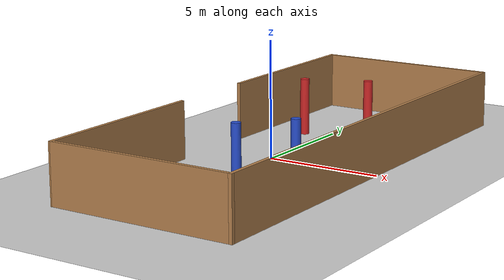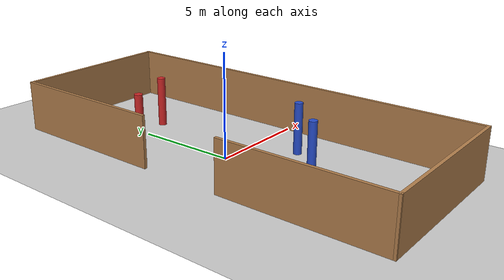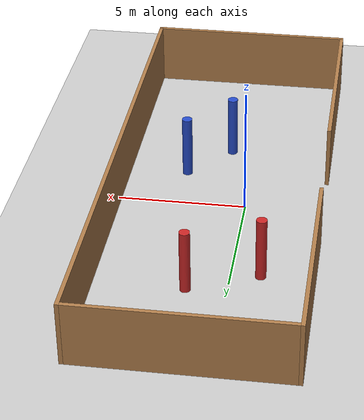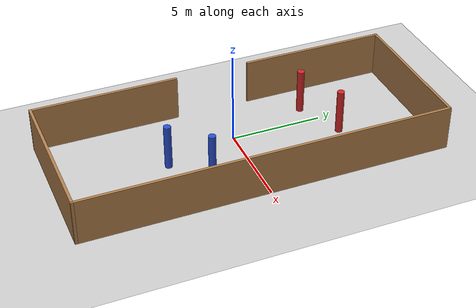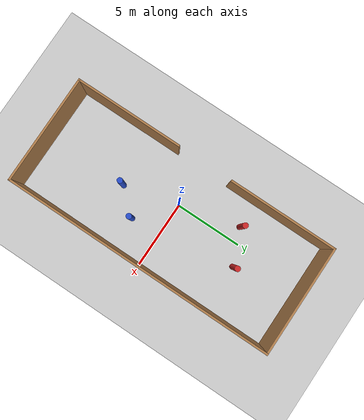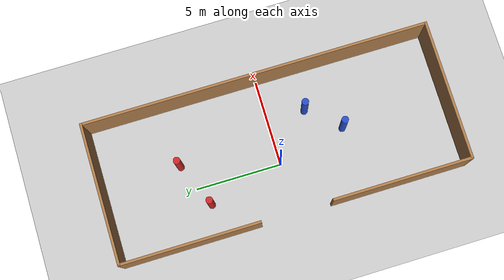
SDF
<?xml version="1.0" ?>
<sdf version="1.5">
  <world name="default">

    <physics type="ode">
      <type>world</type>
      <max_step_size>0.001</max_step_size>
      <real_time_update_rate>1000</real_time_update_rate>
      <iters>500</iters>
    </physics>

    <!-- 光源 -->
    <include>
      <uri>model://sun</uri>
    </include>

    <!-- 地板 -->
    <include>
      <uri>model://ground_plane</uri>
    </include>

    <!-- 你的牆壁與障礙物場景 -->
    <include>
      <uri>model://my_world</uri>
    </include>

  </world>
</sdf>

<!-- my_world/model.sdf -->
<sdf version='1.7'>
  <model name='my_world'>
    <pose>0 0 0 0 0 0</pose>
    <link name='Wall_0'>
      <collision name='Wall_0_Collision'>
        <geometry>
          <box>
            <size>20.15 0.15 2.5</size>
          </box>
        </geometry>
        <pose>0 0 1.25 0 -0 0</pose>
      </collision>
      <visual name='Wall_0_Visual'>
        <pose>0 0 1.25 0 -0 0</pose>
        <geometry>
          <box>
            <size>20.15 0.15 2.5</size>
          </box>
        </geometry>
        <material>
          <script>
            <uri>file://media/materials/scripts/gazebo.material</uri>
            <name>Gazebo/Wood</name>
          </script>
          <ambient>1 1 1 1</ambient>
        </material>
        <meta>
          <layer>0</layer>
        </meta>
      </visual>
      <pose>4.9625 9e-06 0 0 -0 -1.5708</pose>
    </link>
    <link name='Wall_2'>
      <collision name='Wall_2_Collision'>
        <geometry>
          <box>
            <size>8.15 0.15 2.5</size>
          </box>
        </geometry>
        <pose>0 0 1.25 0 -0 0</pose>
      </collision>
      <visual name='Wall_2_Visual'>
        <pose>0 0 1.25 0 -0 0</pose>
        <geometry>
          <box>
            <size>8.15 0.15 2.5</size>
          </box>
        </geometry>
        <material>
          <script>
            <uri>file://media/materials/scripts/gazebo.material</uri>
            <name>Gazebo/Wood</name>
          </script>
          <ambient>1 1 1 1</ambient>
        </material>
        <meta>
          <layer>0</layer>
        </meta>
      </visual>
      <pose>0.9625 10 0 0 -0 0</pose>
    </link>
    <link name='Wall_4'>
      <collision name='Wall_4_Collision'>
        <geometry>
          <box>
            <size>8.05 0.15 2.5</size>
          </box>
        </geometry>
        <pose>0 0 1.25 0 -0 0</pose>
      </collision>
      <visual name='Wall_4_Visual'>
        <pose>0 0 1.25 0 -0 0</pose>
        <geometry>
          <box>
            <size>8.05 0.15 2.5</size>
          </box>
        </geometry>
        <material>
          <script>
            <uri>file://media/materials/scripts/gazebo.material</uri>
            <name>Gazebo/Wood</name>
          </script>
          <ambient>1 1 1 1</ambient>
        </material>
        <meta>
          <layer>0</layer>
        </meta>
      </visual>
      <pose>-3.0375 6.05001 0 0 -0 1.5708</pose>
    </link>
    <link name='Wall_6'>
      <collision name='Wall_6_Collision'>
        <geometry>
          <box>
            <size>8.05 0.15 2.5</size>
          </box>
        </geometry>
        <pose>0 0 1.25 0 -0 0</pose>
      </collision>
      <visual name='Wall_6_Visual'>
        <pose>0 0 1.25 0 -0 0</pose>
        <geometry>
          <box>
            <size>8.05 0.15 2.5</size>
          </box>
        </geometry>
        <material>
          <script>
            <uri>file://media/materials/scripts/gazebo.material</uri>
            <name>Gazebo/Wood</name>
          </script>
          <ambient>1 1 1 1</ambient>
        </material>
        <meta>
          <layer>0</layer>
        </meta>
      </visual>
      <pose>-3.0385 -6.04999 0 0 -0 -1.57054</pose>
    </link>
    <link name='Wall_8'>
      <collision name='Wall_8_Collision'>
        <geometry>
          <box>
            <size>8.15 0.15 2.5</size>
          </box>
        </geometry>
        <pose>0 0 1.25 0 -0 0</pose>
      </collision>
      <visual name='Wall_8_Visual'>
        <pose>0 0 1.25 0 -0 0</pose>
        <geometry>
          <box>
            <size>8.15 0.15 2.5</size>
          </box>
        </geometry>
        <material>
          <script>
            <uri>file://media/materials/scripts/gazebo.material</uri>
            <name>Gazebo/Wood</name>
          </script>
          <ambient>1 1 1 1</ambient>
        </material>
        <meta>
          <layer>0</layer>
        </meta>
      </visual>
      <pose>0.9625 -9.99999 0 0 -0 0</pose>
    </link>
   <!-- Obstacle 1 -->
    <link name='Obstacle_1'>
      <collision name='Obstacle_1_Collision'>
        <geometry>
          <cylinder>
            <radius>0.2</radius>
            <length>2.5</length>
          </cylinder>
        </geometry>
        <pose>0 0 1.25 0 0 0</pose>
      </collision>
      <visual name='Obstacle_1_Visual'>
        <geometry>
          <cylinder>
            <radius>0.2</radius>
            <length>2.5</length>
          </cylinder>
        </geometry>
        <pose>0 0 1.25 0 0 0</pose>
        <material>
          <script>
            <uri>file://media/materials/scripts/gazebo.material</uri>
            <name>Gazebo/Red</name>
          </script>
          <ambient>1 0.3 0.3 1</ambient>
        </material>
      </visual>
      <pose>1.5 5.5 0 0 0 0</pose>
    </link>

    <!-- Obstacle 2 -->
    <link name='Obstacle_2'>
      <collision name='Obstacle_2_Collision'>
        <geometry>
          <cylinder>
            <radius>0.2</radius>
            <length>2.5</length>
          </cylinder>
        </geometry>
        <pose>0 0 1.25 0 0 0</pose>
      </collision>
      <visual name='Obstacle_2_Visual'>
        <geometry>
          <cylinder>
            <radius>0.2</radius>
            <length>2.5</length>
          </cylinder>
        </geometry>
        <pose>0 0 1.25 0 0 0</pose>
        <material>
          <script>
            <uri>file://media/materials/scripts/gazebo.material</uri>
            <name>Gazebo/Blue</name>
          </script>
          <ambient>0.3 0.3 1 1</ambient>
        </material>
      </visual>
      <pose>1.0 -4.0 0 0 0 0</pose>
    </link>

    <!-- Obstacle 3 -->
    <link name='Obstacle_3'>
      <collision name='Obstacle_3_Collision'>
        <geometry>
          <cylinder>
            <radius>0.2</radius>
            <length>2.5</length>
          </cylinder>
        </geometry>
        <pose>0 0 1.25 0 0 0</pose>
      </collision>
      <visual name='Obstacle_3_Visual'>
        <geometry>
          <cylinder>
            <radius>0.2</radius>
            <length>2.5</length>
          </cylinder>
        </geometry>
        <pose>0 0 1.25 0 0 0</pose>
        <material>
          <script>
            <uri>file://media/materials/scripts/gazebo.material</uri>
            <name>Gazebo/Red</name>
          </script>
          <ambient>1 0.3 0.3 1</ambient>
        </material>
      </visual>
      <pose>-1.1 4.4 0 0 0 0</pose>
    </link>

    <!-- Obstacle 4 -->
    <link name='Obstacle_4'>
      <collision name='Obstacle_4_Collision'>
        <geometry>
          <cylinder>
            <radius>0.2</radius>
            <length>2.5</length>
          </cylinder>
        </geometry>
        <pose>0 0 1.25 0 0 0</pose>
      </collision>
      <visual name='Obstacle_4_Visual'>
        <geometry>
          <cylinder>
            <radius>0.2</radius>
            <length>2.5</length>
          </cylinder>
        </geometry>
        <pose>0 0 1.25 0 0 0</pose>
        <material>
          <script>
            <uri>file://media/materials/scripts/gazebo.material</uri>
            <name>Gazebo/Blue</name>
          </script>
          <ambient>0.3 0.3 1 1</ambient>
        </material>
      </visual>
      <pose>2.6 -2.2 0 0 0 0</pose>
    </link>
    <static>1</static>
  </model>
</sdf>
